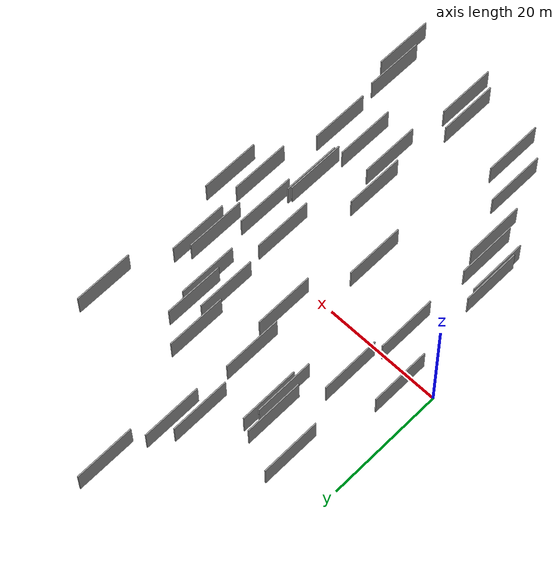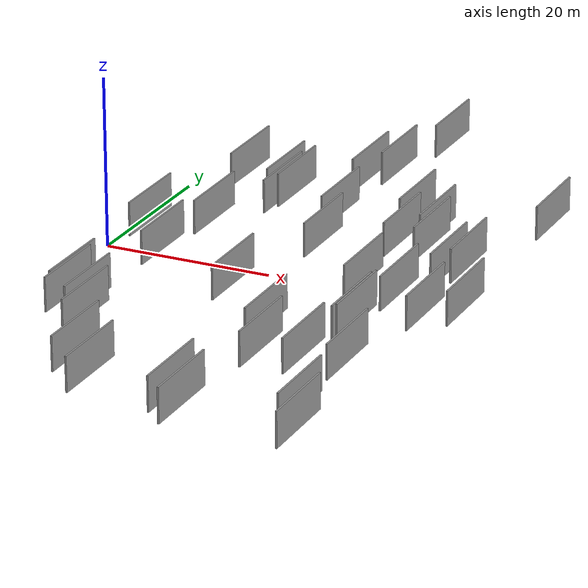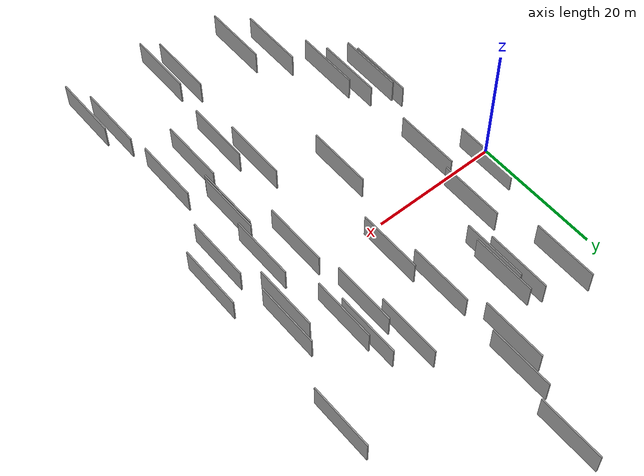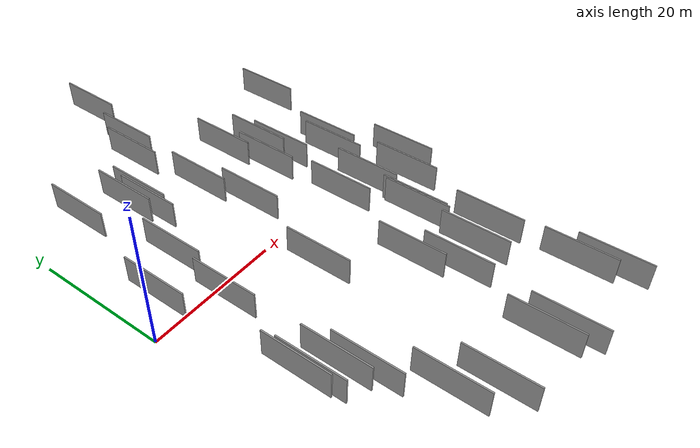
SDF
<sdf version="1.6">
 <world name="default">
  <scene>
   <sky><clouds><speed>12</speed></clouds></sky>
   <ambient>0.4 0.4 0.4 1</ambient>
   <background>0.7 0.7 0.7 1</background>
   <shadows>1</shadows>
  </scene>
  <gravity>0 0 -9.8066</gravity>
  <magnetic_field>6e-06 2.3e-05 -4.2e-05</magnetic_field>
  <physics default="0" name="default_physics" type="ode">
   <ode>
    <solver>
     <type>quick</type>
     <iters>10</iters>
     <sor>1.0</sor>
     <use_dynamic_moi_rescaling>0</use_dynamic_moi_rescaling>
    </solver>
    <constraints>
     <cfm>0</cfm>
     <erp>0.2</erp>
     <contact_max_correcting_vel>100</contact_max_correcting_vel>
     <contact_surface_layer>0.001</contact_surface_layer>
    </constraints>
   </ode>
   <max_step_size>0.004</max_step_size>
   <real_time_factor>1</real_time_factor>
   <real_time_update_rate>250</real_time_update_rate>
  </physics>
  <light name="sun" type="directional">
   <pose>0 0 10 0 0 0</pose>
   <diffuse>0.8 0.8 0.8 1</diffuse>
   <specular>0.2 0.2 0.2 1</specular>
   <attenuation>
    <range>1000</range>
    <constant>0.9</constant>
    <linear>0.01</linear>
    <quadratic>0.001</quadratic>
   </attenuation>
   <direction>-0.5 0.1 -0.9</direction>
  </light>
  <model name="grey_wall_1">
   <static>1</static>
   <pose>30.2794 -23.0548 2.5 0.000000 0.000000 1.570796</pose>
   <link name="link">
    <pose>0 0 2.00 0 0 0</pose>
    <collision name="collision"><geometry><box><size>10.00 0.2 4.00</size></box></geometry></collision>
    <visual name="visual">
     <cast_shadows>0</cast_shadows>
     <geometry><box><size>10.00 0.2 4.00</size></box></geometry>
     <material>
      <script>
       <uri>model://grey_wall/materials/scripts</uri>
       <uri>model://grey_wall/materials/textures</uri>
       <name>vrc/grey_wall</name>
      </script>
     </material>
    </visual>
   </link>
  </model>
  <model name="grey_wall_2">
   <static>1</static>
   <pose>41.9882 -7.5884 2.5 0.000000 0.000000 1.570796</pose>
   <link name="link">
    <pose>0 0 2.00 0 0 0</pose>
    <collision name="collision"><geometry><box><size>10.00 0.2 4.00</size></box></geometry></collision>
    <visual name="visual">
     <cast_shadows>0</cast_shadows>
     <geometry><box><size>10.00 0.2 4.00</size></box></geometry>
     <material>
      <script>
       <uri>model://grey_wall/materials/scripts</uri>
       <uri>model://grey_wall/materials/textures</uri>
       <name>vrc/grey_wall</name>
      </script>
     </material>
    </visual>
   </link>
  </model>
  <model name="grey_wall_3">
   <static>1</static>
   <pose>41.2114 6.0041 2.5 0.000000 0.000000 1.570796</pose>
   <link name="link">
    <pose>0 0 2.00 0 0 0</pose>
    <collision name="collision"><geometry><box><size>10.00 0.2 4.00</size></box></geometry></collision>
    <visual name="visual">
     <cast_shadows>0</cast_shadows>
     <geometry><box><size>10.00 0.2 4.00</size></box></geometry>
     <material>
      <script>
       <uri>model://grey_wall/materials/scripts</uri>
       <uri>model://grey_wall/materials/textures</uri>
       <name>vrc/grey_wall</name>
      </script>
     </material>
    </visual>
   </link>
  </model>
  <model name="grey_wall_4">
   <static>1</static>
   <pose>3.7185 3.2324 2.5 0.000000 0.000000 1.570796</pose>
   <link name="link">
    <pose>0 0 2.00 0 0 0</pose>
    <collision name="collision"><geometry><box><size>10.00 0.2 4.00</size></box></geometry></collision>
    <visual name="visual">
     <cast_shadows>0</cast_shadows>
     <geometry><box><size>10.00 0.2 4.00</size></box></geometry>
     <material>
      <script>
       <uri>model://grey_wall/materials/scripts</uri>
       <uri>model://grey_wall/materials/textures</uri>
       <name>vrc/grey_wall</name>
      </script>
     </material>
    </visual>
   </link>
  </model>
  <model name="grey_wall_5">
   <static>1</static>
   <pose>39.6640 -22.1935 2.5 0.000000 0.000000 1.570796</pose>
   <link name="link">
    <pose>0 0 2.00 0 0 0</pose>
    <collision name="collision"><geometry><box><size>10.00 0.2 4.00</size></box></geometry></collision>
    <visual name="visual">
     <cast_shadows>0</cast_shadows>
     <geometry><box><size>10.00 0.2 4.00</size></box></geometry>
     <material>
      <script>
       <uri>model://grey_wall/materials/scripts</uri>
       <uri>model://grey_wall/materials/textures</uri>
       <name>vrc/grey_wall</name>
      </script>
     </material>
    </visual>
   </link>
  </model>
  <model name="grey_wall_6">
   <static>1</static>
   <pose>30.3912 16.9985 2.5 0.000000 0.000000 1.570796</pose>
   <link name="link">
    <pose>0 0 2.00 0 0 0</pose>
    <collision name="collision"><geometry><box><size>10.00 0.2 4.00</size></box></geometry></collision>
    <visual name="visual">
     <cast_shadows>0</cast_shadows>
     <geometry><box><size>10.00 0.2 4.00</size></box></geometry>
     <material>
      <script>
       <uri>model://grey_wall/materials/scripts</uri>
       <uri>model://grey_wall/materials/textures</uri>
       <name>vrc/grey_wall</name>
      </script>
     </material>
    </visual>
   </link>
  </model>
  <model name="grey_wall_7">
   <static>1</static>
   <pose>17.3504 -35.9372 2.5 0.000000 0.000000 1.570796</pose>
   <link name="link">
    <pose>0 0 2.00 0 0 0</pose>
    <collision name="collision"><geometry><box><size>10.00 0.2 4.00</size></box></geometry></collision>
    <visual name="visual">
     <cast_shadows>0</cast_shadows>
     <geometry><box><size>10.00 0.2 4.00</size></box></geometry>
     <material>
      <script>
       <uri>model://grey_wall/materials/scripts</uri>
       <uri>model://grey_wall/materials/textures</uri>
       <name>vrc/grey_wall</name>
      </script>
     </material>
    </visual>
   </link>
  </model>
  <model name="grey_wall_8">
   <static>1</static>
   <pose>22.7517 29.2488 2.5 0.000000 0.000000 1.570796</pose>
   <link name="link">
    <pose>0 0 2.00 0 0 0</pose>
    <collision name="collision"><geometry><box><size>10.00 0.2 4.00</size></box></geometry></collision>
    <visual name="visual">
     <cast_shadows>0</cast_shadows>
     <geometry><box><size>10.00 0.2 4.00</size></box></geometry>
     <material>
      <script>
       <uri>model://grey_wall/materials/scripts</uri>
       <uri>model://grey_wall/materials/textures</uri>
       <name>vrc/grey_wall</name>
      </script>
     </material>
    </visual>
   </link>
  </model>
  <model name="grey_wall_9">
   <static>1</static>
   <pose>36.3619 -12.6385 2.5 0.000000 0.000000 1.570796</pose>
   <link name="link">
    <pose>0 0 2.00 0 0 0</pose>
    <collision name="collision"><geometry><box><size>10.00 0.2 4.00</size></box></geometry></collision>
    <visual name="visual">
     <cast_shadows>0</cast_shadows>
     <geometry><box><size>10.00 0.2 4.00</size></box></geometry>
     <material>
      <script>
       <uri>model://grey_wall/materials/scripts</uri>
       <uri>model://grey_wall/materials/textures</uri>
       <name>vrc/grey_wall</name>
      </script>
     </material>
    </visual>
   </link>
  </model>
  <model name="grey_wall_10">
   <static>1</static>
   <pose>35.1726 9.9835 2.5 0.000000 0.000000 1.570796</pose>
   <link name="link">
    <pose>0 0 2.00 0 0 0</pose>
    <collision name="collision"><geometry><box><size>10.00 0.2 4.00</size></box></geometry></collision>
    <visual name="visual">
     <cast_shadows>0</cast_shadows>
     <geometry><box><size>10.00 0.2 4.00</size></box></geometry>
     <material>
      <script>
       <uri>model://grey_wall/materials/scripts</uri>
       <uri>model://grey_wall/materials/textures</uri>
       <name>vrc/grey_wall</name>
      </script>
     </material>
    </visual>
   </link>
  </model>
  <model name="grey_wall_11">
   <static>1</static>
   <pose>34.3081 13.6093 2.5 0.000000 0.000000 1.570796</pose>
   <link name="link">
    <pose>0 0 2.00 0 0 0</pose>
    <collision name="collision"><geometry><box><size>10.00 0.2 4.00</size></box></geometry></collision>
    <visual name="visual">
     <cast_shadows>0</cast_shadows>
     <geometry><box><size>10.00 0.2 4.00</size></box></geometry>
     <material>
      <script>
       <uri>model://grey_wall/materials/scripts</uri>
       <uri>model://grey_wall/materials/textures</uri>
       <name>vrc/grey_wall</name>
      </script>
     </material>
    </visual>
   </link>
  </model>
  <model name="grey_wall_12">
   <static>1</static>
   <pose>23.8626 5.9200 2.5 0.000000 0.000000 1.570796</pose>
   <link name="link">
    <pose>0 0 2.00 0 0 0</pose>
    <collision name="collision"><geometry><box><size>10.00 0.2 4.00</size></box></geometry></collision>
    <visual name="visual">
     <cast_shadows>0</cast_shadows>
     <geometry><box><size>10.00 0.2 4.00</size></box></geometry>
     <material>
      <script>
       <uri>model://grey_wall/materials/scripts</uri>
       <uri>model://grey_wall/materials/textures</uri>
       <name>vrc/grey_wall</name>
      </script>
     </material>
    </visual>
   </link>
  </model>
  <model name="grey_wall_13">
   <static>1</static>
   <pose>37.4167 -4.0301 2.5 0.000000 0.000000 1.570796</pose>
   <link name="link">
    <pose>0 0 2.00 0 0 0</pose>
    <collision name="collision"><geometry><box><size>10.00 0.2 4.00</size></box></geometry></collision>
    <visual name="visual">
     <cast_shadows>0</cast_shadows>
     <geometry><box><size>10.00 0.2 4.00</size></box></geometry>
     <material>
      <script>
       <uri>model://grey_wall/materials/scripts</uri>
       <uri>model://grey_wall/materials/textures</uri>
       <name>vrc/grey_wall</name>
      </script>
     </material>
    </visual>
   </link>
  </model>
  <model name="grey_wall_14">
   <static>1</static>
   <pose>14.8687 18.0672 2.5 0.000000 0.000000 1.570796</pose>
   <link name="link">
    <pose>0 0 2.00 0 0 0</pose>
    <collision name="collision"><geometry><box><size>10.00 0.2 4.00</size></box></geometry></collision>
    <visual name="visual">
     <cast_shadows>0</cast_shadows>
     <geometry><box><size>10.00 0.2 4.00</size></box></geometry>
     <material>
      <script>
       <uri>model://grey_wall/materials/scripts</uri>
       <uri>model://grey_wall/materials/textures</uri>
       <name>vrc/grey_wall</name>
      </script>
     </material>
    </visual>
   </link>
  </model>
  <model name="grey_wall_15">
   <static>1</static>
   <pose>20.0746 -8.8930 2.5 0.000000 0.000000 1.570796</pose>
   <link name="link">
    <pose>0 0 2.00 0 0 0</pose>
    <collision name="collision"><geometry><box><size>10.00 0.2 4.00</size></box></geometry></collision>
    <visual name="visual">
     <cast_shadows>0</cast_shadows>
     <geometry><box><size>10.00 0.2 4.00</size></box></geometry>
     <material>
      <script>
       <uri>model://grey_wall/materials/scripts</uri>
       <uri>model://grey_wall/materials/textures</uri>
       <name>vrc/grey_wall</name>
      </script>
     </material>
    </visual>
   </link>
  </model>
  <model name="grey_wall_16">
   <static>1</static>
   <pose>29.0551 -38.5126 2.5 0.000000 0.000000 1.570796</pose>
   <link name="link">
    <pose>0 0 2.00 0 0 0</pose>
    <collision name="collision"><geometry><box><size>10.00 0.2 4.00</size></box></geometry></collision>
    <visual name="visual">
     <cast_shadows>0</cast_shadows>
     <geometry><box><size>10.00 0.2 4.00</size></box></geometry>
     <material>
      <script>
       <uri>model://grey_wall/materials/scripts</uri>
       <uri>model://grey_wall/materials/textures</uri>
       <name>vrc/grey_wall</name>
      </script>
     </material>
    </visual>
   </link>
  </model>
  <model name="grey_wall_17">
   <static>1</static>
   <pose>32.7055 -2.8801 2.5 0.000000 0.000000 1.570796</pose>
   <link name="link">
    <pose>0 0 2.00 0 0 0</pose>
    <collision name="collision"><geometry><box><size>10.00 0.2 4.00</size></box></geometry></collision>
    <visual name="visual">
     <cast_shadows>0</cast_shadows>
     <geometry><box><size>10.00 0.2 4.00</size></box></geometry>
     <material>
      <script>
       <uri>model://grey_wall/materials/scripts</uri>
       <uri>model://grey_wall/materials/textures</uri>
       <name>vrc/grey_wall</name>
      </script>
     </material>
    </visual>
   </link>
  </model>
  <model name="grey_wall_18">
   <static>1</static>
   <pose>36.0712 -13.2041 2.5 0.000000 0.000000 1.570796</pose>
   <link name="link">
    <pose>0 0 2.00 0 0 0</pose>
    <collision name="collision"><geometry><box><size>10.00 0.2 4.00</size></box></geometry></collision>
    <visual name="visual">
     <cast_shadows>0</cast_shadows>
     <geometry><box><size>10.00 0.2 4.00</size></box></geometry>
     <material>
      <script>
       <uri>model://grey_wall/materials/scripts</uri>
       <uri>model://grey_wall/materials/textures</uri>
       <name>vrc/grey_wall</name>
      </script>
     </material>
    </visual>
   </link>
  </model>
  <model name="grey_wall_19">
   <static>1</static>
   <pose>9.9695 6.7768 2.5 0.000000 0.000000 1.570796</pose>
   <link name="link">
    <pose>0 0 2.00 0 0 0</pose>
    <collision name="collision"><geometry><box><size>10.00 0.2 4.00</size></box></geometry></collision>
    <visual name="visual">
     <cast_shadows>0</cast_shadows>
     <geometry><box><size>10.00 0.2 4.00</size></box></geometry>
     <material>
      <script>
       <uri>model://grey_wall/materials/scripts</uri>
       <uri>model://grey_wall/materials/textures</uri>
       <name>vrc/grey_wall</name>
      </script>
     </material>
    </visual>
   </link>
  </model>
  <model name="grey_wall_20">
   <static>1</static>
   <pose>13.6038 -32.1284 2.5 0.000000 0.000000 1.570796</pose>
   <link name="link">
    <pose>0 0 2.00 0 0 0</pose>
    <collision name="collision"><geometry><box><size>10.00 0.2 4.00</size></box></geometry></collision>
    <visual name="visual">
     <cast_shadows>0</cast_shadows>
     <geometry><box><size>10.00 0.2 4.00</size></box></geometry>
     <material>
      <script>
       <uri>model://grey_wall/materials/scripts</uri>
       <uri>model://grey_wall/materials/textures</uri>
       <name>vrc/grey_wall</name>
      </script>
     </material>
    </visual>
   </link>
  </model>
  <model name="grey_wall_21">
   <static>1</static>
   <pose>20.6222 25.8553 2.5 0.000000 0.000000 1.570796</pose>
   <link name="link">
    <pose>0 0 2.00 0 0 0</pose>
    <collision name="collision"><geometry><box><size>10.00 0.2 4.00</size></box></geometry></collision>
    <visual name="visual">
     <cast_shadows>0</cast_shadows>
     <geometry><box><size>10.00 0.2 4.00</size></box></geometry>
     <material>
      <script>
       <uri>model://grey_wall/materials/scripts</uri>
       <uri>model://grey_wall/materials/textures</uri>
       <name>vrc/grey_wall</name>
      </script>
     </material>
    </visual>
   </link>
  </model>
  <model name="grey_wall_22">
   <static>1</static>
   <pose>10.0516 -23.5459 2.5 0.000000 0.000000 1.570796</pose>
   <link name="link">
    <pose>0 0 2.00 0 0 0</pose>
    <collision name="collision"><geometry><box><size>10.00 0.2 4.00</size></box></geometry></collision>
    <visual name="visual">
     <cast_shadows>0</cast_shadows>
     <geometry><box><size>10.00 0.2 4.00</size></box></geometry>
     <material>
      <script>
       <uri>model://grey_wall/materials/scripts</uri>
       <uri>model://grey_wall/materials/textures</uri>
       <name>vrc/grey_wall</name>
      </script>
     </material>
    </visual>
   </link>
  </model>
  <model name="grey_wall_23">
   <static>1</static>
   <pose>7.1945 21.6105 2.5 0.000000 0.000000 1.570796</pose>
   <link name="link">
    <pose>0 0 2.00 0 0 0</pose>
    <collision name="collision"><geometry><box><size>10.00 0.2 4.00</size></box></geometry></collision>
    <visual name="visual">
     <cast_shadows>0</cast_shadows>
     <geometry><box><size>10.00 0.2 4.00</size></box></geometry>
     <material>
      <script>
       <uri>model://grey_wall/materials/scripts</uri>
       <uri>model://grey_wall/materials/textures</uri>
       <name>vrc/grey_wall</name>
      </script>
     </material>
    </visual>
   </link>
  </model>
  <model name="grey_wall_24">
   <static>1</static>
   <pose>45.3429 -4.6886 2.5 0.000000 0.000000 1.570796</pose>
   <link name="link">
    <pose>0 0 2.00 0 0 0</pose>
    <collision name="collision"><geometry><box><size>10.00 0.2 4.00</size></box></geometry></collision>
    <visual name="visual">
     <cast_shadows>0</cast_shadows>
     <geometry><box><size>10.00 0.2 4.00</size></box></geometry>
     <material>
      <script>
       <uri>model://grey_wall/materials/scripts</uri>
       <uri>model://grey_wall/materials/textures</uri>
       <name>vrc/grey_wall</name>
      </script>
     </material>
    </visual>
   </link>
  </model>
  <model name="grey_wall_25">
   <static>1</static>
   <pose>8.6170 -20.3999 2.5 0.000000 0.000000 1.570796</pose>
   <link name="link">
    <pose>0 0 2.00 0 0 0</pose>
    <collision name="collision"><geometry><box><size>10.00 0.2 4.00</size></box></geometry></collision>
    <visual name="visual">
     <cast_shadows>0</cast_shadows>
     <geometry><box><size>10.00 0.2 4.00</size></box></geometry>
     <material>
      <script>
       <uri>model://grey_wall/materials/scripts</uri>
       <uri>model://grey_wall/materials/textures</uri>
       <name>vrc/grey_wall</name>
      </script>
     </material>
    </visual>
   </link>
  </model>
  <model name="grey_wall_26">
   <static>1</static>
   <pose>40.2537 -34.7423 2.5 0.000000 0.000000 1.570796</pose>
   <link name="link">
    <pose>0 0 2.00 0 0 0</pose>
    <collision name="collision"><geometry><box><size>10.00 0.2 4.00</size></box></geometry></collision>
    <visual name="visual">
     <cast_shadows>0</cast_shadows>
     <geometry><box><size>10.00 0.2 4.00</size></box></geometry>
     <material>
      <script>
       <uri>model://grey_wall/materials/scripts</uri>
       <uri>model://grey_wall/materials/textures</uri>
       <name>vrc/grey_wall</name>
      </script>
     </material>
    </visual>
   </link>
  </model>
  <model name="grey_wall_27">
   <static>1</static>
   <pose>5.5946 -19.1985 2.5 0.000000 0.000000 1.570796</pose>
   <link name="link">
    <pose>0 0 2.00 0 0 0</pose>
    <collision name="collision"><geometry><box><size>10.00 0.2 4.00</size></box></geometry></collision>
    <visual name="visual">
     <cast_shadows>0</cast_shadows>
     <geometry><box><size>10.00 0.2 4.00</size></box></geometry>
     <material>
      <script>
       <uri>model://grey_wall/materials/scripts</uri>
       <uri>model://grey_wall/materials/textures</uri>
       <name>vrc/grey_wall</name>
      </script>
     </material>
    </visual>
   </link>
  </model>
  <model name="grey_wall_28">
   <static>1</static>
   <pose>22.2194 14.0126 2.5 0.000000 0.000000 1.570796</pose>
   <link name="link">
    <pose>0 0 2.00 0 0 0</pose>
    <collision name="collision"><geometry><box><size>10.00 0.2 4.00</size></box></geometry></collision>
    <visual name="visual">
     <cast_shadows>0</cast_shadows>
     <geometry><box><size>10.00 0.2 4.00</size></box></geometry>
     <material>
      <script>
       <uri>model://grey_wall/materials/scripts</uri>
       <uri>model://grey_wall/materials/textures</uri>
       <name>vrc/grey_wall</name>
      </script>
     </material>
    </visual>
   </link>
  </model>
  <model name="grey_wall_29">
   <static>1</static>
   <pose>14.2439 15.6941 2.5 0.000000 0.000000 1.570796</pose>
   <link name="link">
    <pose>0 0 2.00 0 0 0</pose>
    <collision name="collision"><geometry><box><size>10.00 0.2 4.00</size></box></geometry></collision>
    <visual name="visual">
     <cast_shadows>0</cast_shadows>
     <geometry><box><size>10.00 0.2 4.00</size></box></geometry>
     <material>
      <script>
       <uri>model://grey_wall/materials/scripts</uri>
       <uri>model://grey_wall/materials/textures</uri>
       <name>vrc/grey_wall</name>
      </script>
     </material>
    </visual>
   </link>
  </model>
  <model name="grey_wall_30">
   <static>1</static>
   <pose>26.8885 -36.5599 2.5 0.000000 0.000000 1.570796</pose>
   <link name="link">
    <pose>0 0 2.00 0 0 0</pose>
    <collision name="collision"><geometry><box><size>10.00 0.2 4.00</size></box></geometry></collision>
    <visual name="visual">
     <cast_shadows>0</cast_shadows>
     <geometry><box><size>10.00 0.2 4.00</size></box></geometry>
     <material>
      <script>
       <uri>model://grey_wall/materials/scripts</uri>
       <uri>model://grey_wall/materials/textures</uri>
       <name>vrc/grey_wall</name>
      </script>
     </material>
    </visual>
   </link>
  </model>
  <model name="grey_wall_31">
   <static>1</static>
   <pose>24.9037 39.9494 2.5 0.000000 0.000000 1.570796</pose>
   <link name="link">
    <pose>0 0 2.00 0 0 0</pose>
    <collision name="collision"><geometry><box><size>10.00 0.2 4.00</size></box></geometry></collision>
    <visual name="visual">
     <cast_shadows>0</cast_shadows>
     <geometry><box><size>10.00 0.2 4.00</size></box></geometry>
     <material>
      <script>
       <uri>model://grey_wall/materials/scripts</uri>
       <uri>model://grey_wall/materials/textures</uri>
       <name>vrc/grey_wall</name>
      </script>
     </material>
    </visual>
   </link>
  </model>
  <model name="grey_wall_32">
   <static>1</static>
   <pose>45.0777 21.1826 2.5 0.000000 0.000000 1.570796</pose>
   <link name="link">
    <pose>0 0 2.00 0 0 0</pose>
    <collision name="collision"><geometry><box><size>10.00 0.2 4.00</size></box></geometry></collision>
    <visual name="visual">
     <cast_shadows>0</cast_shadows>
     <geometry><box><size>10.00 0.2 4.00</size></box></geometry>
     <material>
      <script>
       <uri>model://grey_wall/materials/scripts</uri>
       <uri>model://grey_wall/materials/textures</uri>
       <name>vrc/grey_wall</name>
      </script>
     </material>
    </visual>
   </link>
  </model>
  <model name="grey_wall_33">
   <static>1</static>
   <pose>13.0723 18.9525 2.5 0.000000 0.000000 1.570796</pose>
   <link name="link">
    <pose>0 0 2.00 0 0 0</pose>
    <collision name="collision"><geometry><box><size>10.00 0.2 4.00</size></box></geometry></collision>
    <visual name="visual">
     <cast_shadows>0</cast_shadows>
     <geometry><box><size>10.00 0.2 4.00</size></box></geometry>
     <material>
      <script>
       <uri>model://grey_wall/materials/scripts</uri>
       <uri>model://grey_wall/materials/textures</uri>
       <name>vrc/grey_wall</name>
      </script>
     </material>
    </visual>
   </link>
  </model>
  <model name="grey_wall_34">
   <static>1</static>
   <pose>31.6674 9.7786 2.5 0.000000 0.000000 1.570796</pose>
   <link name="link">
    <pose>0 0 2.00 0 0 0</pose>
    <collision name="collision"><geometry><box><size>10.00 0.2 4.00</size></box></geometry></collision>
    <visual name="visual">
     <cast_shadows>0</cast_shadows>
     <geometry><box><size>10.00 0.2 4.00</size></box></geometry>
     <material>
      <script>
       <uri>model://grey_wall/materials/scripts</uri>
       <uri>model://grey_wall/materials/textures</uri>
       <name>vrc/grey_wall</name>
      </script>
     </material>
    </visual>
   </link>
  </model>
  <model name="grey_wall_35">
   <static>1</static>
   <pose>39.7845 3.8638 2.5 0.000000 0.000000 1.570796</pose>
   <link name="link">
    <pose>0 0 2.00 0 0 0</pose>
    <collision name="collision"><geometry><box><size>10.00 0.2 4.00</size></box></geometry></collision>
    <visual name="visual">
     <cast_shadows>0</cast_shadows>
     <geometry><box><size>10.00 0.2 4.00</size></box></geometry>
     <material>
      <script>
       <uri>model://grey_wall/materials/scripts</uri>
       <uri>model://grey_wall/materials/textures</uri>
       <name>vrc/grey_wall</name>
      </script>
     </material>
    </visual>
   </link>
  </model>
  <model name="grey_wall_36">
   <static>1</static>
   <pose>41.9185 -38.5793 2.5 0.000000 0.000000 1.570796</pose>
   <link name="link">
    <pose>0 0 2.00 0 0 0</pose>
    <collision name="collision"><geometry><box><size>10.00 0.2 4.00</size></box></geometry></collision>
    <visual name="visual">
     <cast_shadows>0</cast_shadows>
     <geometry><box><size>10.00 0.2 4.00</size></box></geometry>
     <material>
      <script>
       <uri>model://grey_wall/materials/scripts</uri>
       <uri>model://grey_wall/materials/textures</uri>
       <name>vrc/grey_wall</name>
      </script>
     </material>
    </visual>
   </link>
  </model>
  <model name="grey_wall_37">
   <static>1</static>
   <pose>28.1922 -17.5101 2.5 0.000000 0.000000 1.570796</pose>
   <link name="link">
    <pose>0 0 2.00 0 0 0</pose>
    <collision name="collision"><geometry><box><size>10.00 0.2 4.00</size></box></geometry></collision>
    <visual name="visual">
     <cast_shadows>0</cast_shadows>
     <geometry><box><size>10.00 0.2 4.00</size></box></geometry>
     <material>
      <script>
       <uri>model://grey_wall/materials/scripts</uri>
       <uri>model://grey_wall/materials/textures</uri>
       <name>vrc/grey_wall</name>
      </script>
     </material>
    </visual>
   </link>
  </model>
  <model name="grey_wall_38">
   <static>1</static>
   <pose>34.9871 -22.7264 2.5 0.000000 0.000000 1.570796</pose>
   <link name="link">
    <pose>0 0 2.00 0 0 0</pose>
    <collision name="collision"><geometry><box><size>10.00 0.2 4.00</size></box></geometry></collision>
    <visual name="visual">
     <cast_shadows>0</cast_shadows>
     <geometry><box><size>10.00 0.2 4.00</size></box></geometry>
     <material>
      <script>
       <uri>model://grey_wall/materials/scripts</uri>
       <uri>model://grey_wall/materials/textures</uri>
       <name>vrc/grey_wall</name>
      </script>
     </material>
    </visual>
   </link>
  </model>
  <model name="grey_wall_39">
   <static>1</static>
   <pose>5.1914 -17.4537 2.5 0.000000 0.000000 1.570796</pose>
   <link name="link">
    <pose>0 0 2.00 0 0 0</pose>
    <collision name="collision"><geometry><box><size>10.00 0.2 4.00</size></box></geometry></collision>
    <visual name="visual">
     <cast_shadows>0</cast_shadows>
     <geometry><box><size>10.00 0.2 4.00</size></box></geometry>
     <material>
      <script>
       <uri>model://grey_wall/materials/scripts</uri>
       <uri>model://grey_wall/materials/textures</uri>
       <name>vrc/grey_wall</name>
      </script>
     </material>
    </visual>
   </link>
  </model>
  <model name="grey_wall_40">
   <static>1</static>
   <pose>8.7418 -3.4508 2.5 0.000000 0.000000 1.570796</pose>
   <link name="link">
    <pose>0 0 2.00 0 0 0</pose>
    <collision name="collision"><geometry><box><size>10.00 0.2 4.00</size></box></geometry></collision>
    <visual name="visual">
     <cast_shadows>0</cast_shadows>
     <geometry><box><size>10.00 0.2 4.00</size></box></geometry>
     <material>
      <script>
       <uri>model://grey_wall/materials/scripts</uri>
       <uri>model://grey_wall/materials/textures</uri>
       <name>vrc/grey_wall</name>
      </script>
     </material>
    </visual>
   </link>
  </model>
 </world>
</sdf>
